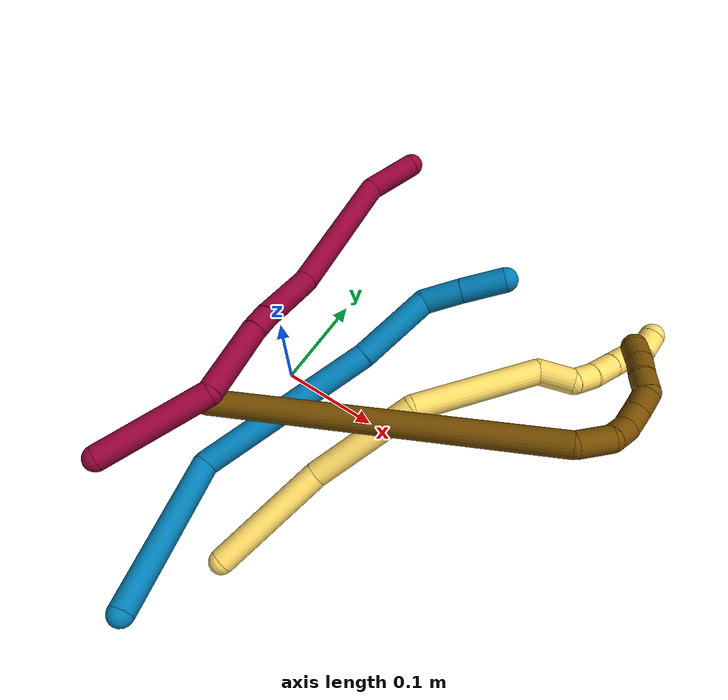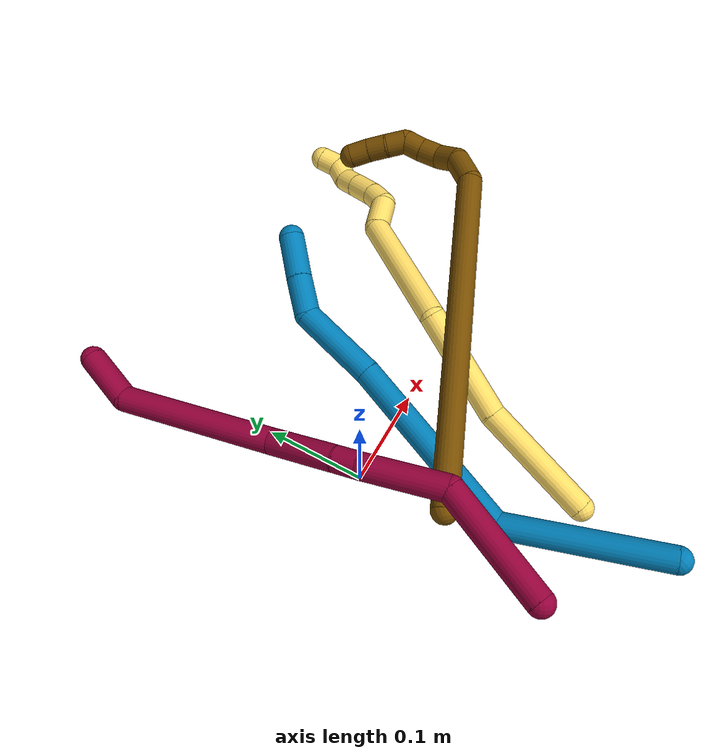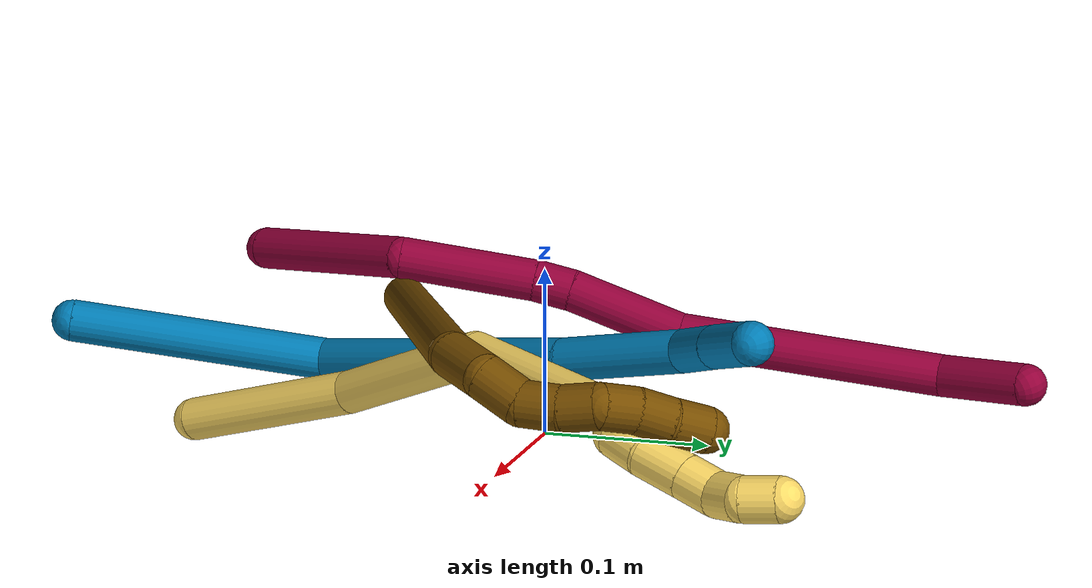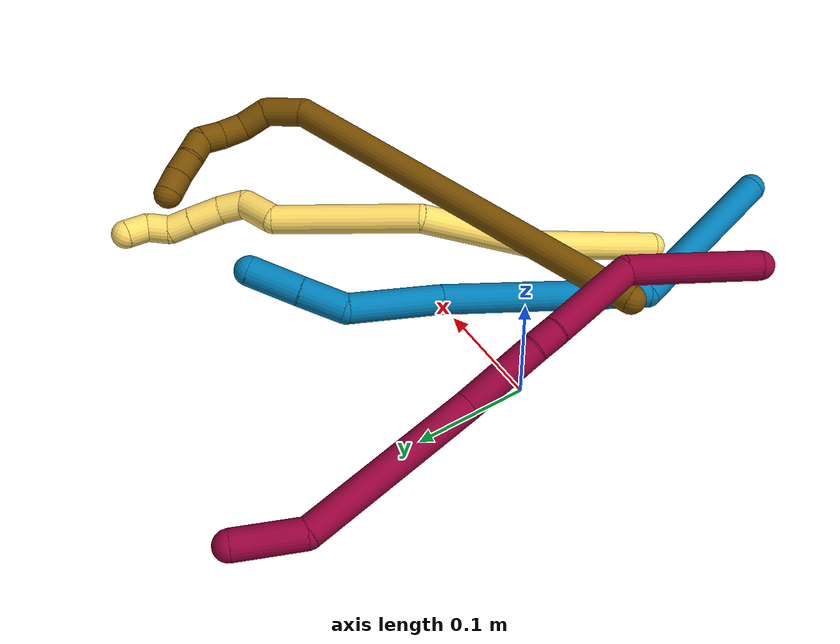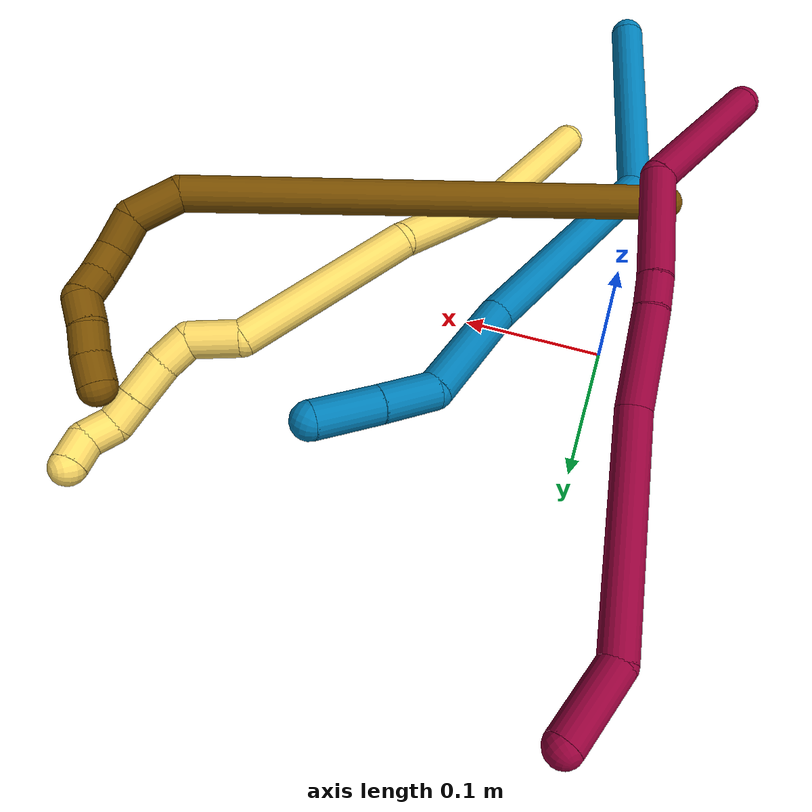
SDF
<sdf version="1.7">
 <world name="default">
  <model name="5">
   <static>0</static>
   <link name="5">
    <collision name="collision-cylinder-e_1_1_4">
     <pose>0.009583 0.018814 0.054523 -0.332277 0.164636 -0.027668</pose>
     <geometry><cylinder><radius>0.0125</radius><length>0.116937</length></cylinder></geometry>
     <surface>
      <friction><ode><mu>1.16</mu><mu2>1.16</mu2><slip1>0</slip1><slip2>0</slip2></ode></friction>
      <contact><ode><kp>1e+06</kp><kd>1</kd><max_vel>0</max_vel><min_depth>0.001</min_depth></ode></contact>
     </surface>
    </collision>
    <visual name="visual-cylinder-e_1_1_4">
     <pose>0.009583 0.018814 0.054523 -0.332277 0.164636 -0.027668</pose>
     <geometry><cylinder><radius>0.0125</radius><length>0.116937</length></cylinder></geometry>
     <material><ambient>1 0.858824 0.4 1</ambient></material>
    </visual>
    <collision name="collision-cylinder-e_2_4_5">
     <pose>0.024161 0.045025 0.16306 -0.136079 0.091388 -0.006232</pose>
     <geometry><cylinder><radius>0.0125</radius><length>0.109493</length></cylinder></geometry>
     <surface>
      <friction><ode><mu>1.16</mu><mu2>1.16</mu2><slip1>0</slip1><slip2>0</slip2></ode></friction>
      <contact><ode><kp>1e+06</kp><kd>1</kd><max_vel>0</max_vel><min_depth>0.001</min_depth></ode></contact>
     </surface>
    </collision>
    <visual name="visual-cylinder-e_2_4_5">
     <pose>0.024161 0.045025 0.16306 -0.136079 0.091388 -0.006232</pose>
     <geometry><cylinder><radius>0.0125</radius><length>0.109493</length></cylinder></geometry>
     <material><ambient>1 0.858824 0.4 1</ambient></material>
    </visual>
    <collision name="collision-cylinder-e_3_5_6">
     <pose>0.062106 0.051781 0.271595 0.011725 0.543568 0.003268</pose>
     <geometry><cylinder><radius>0.0125</radius><length>0.127415</length></cylinder></geometry>
     <surface>
      <friction><ode><mu>1.16</mu><mu2>1.16</mu2><slip1>0</slip1><slip2>0</slip2></ode></friction>
      <contact><ode><kp>1e+06</kp><kd>1</kd><max_vel>0</max_vel><min_depth>0.001</min_depth></ode></contact>
     </surface>
    </collision>
    <visual name="visual-cylinder-e_3_5_6">
     <pose>0.062106 0.051781 0.271595 0.011725 0.543568 0.003268</pose>
     <geometry><cylinder><radius>0.0125</radius><length>0.127415</length></cylinder></geometry>
     <material><ambient>1 0.858824 0.4 1</ambient></material>
    </visual>
    <collision name="collision-cylinder-e_4_6_7">
     <pose>0.102426 0.040712 0.338123 0.71526 0.433991 0.164405</pose>
     <geometry><cylinder><radius>0.0125</radius><length>0.035058</length></cylinder></geometry>
     <surface>
      <friction><ode><mu>1.16</mu><mu2>1.16</mu2><slip1>0</slip1><slip2>0</slip2></ode></friction>
      <contact><ode><kp>1e+06</kp><kd>1</kd><max_vel>0</max_vel><min_depth>0.001</min_depth></ode></contact>
     </surface>
    </collision>
    <visual name="visual-cylinder-e_4_6_7">
     <pose>0.102426 0.040712 0.338123 0.71526 0.433991 0.164405</pose>
     <geometry><cylinder><radius>0.0125</radius><length>0.035058</length></cylinder></geometry>
     <material><ambient>1 0.858824 0.4 1</ambient></material>
    </visual>
    <collision name="collision-cylinder-e_5_7_8">
     <pose>0.117385 0.031336 0.358315 -0.128073 0.74347 -0.049989</pose>
     <geometry><cylinder><radius>0.0125</radius><length>0.022422</length></cylinder></geometry>
     <surface>
      <friction><ode><mu>1.16</mu><mu2>1.16</mu2><slip1>0</slip1><slip2>0</slip2></ode></friction>
      <contact><ode><kp>1e+06</kp><kd>1</kd><max_vel>0</max_vel><min_depth>0.001</min_depth></ode></contact>
     </surface>
    </collision>
    <visual name="visual-cylinder-e_5_7_8">
     <pose>0.117385 0.031336 0.358315 -0.128073 0.74347 -0.049989</pose>
     <geometry><cylinder><radius>0.0125</radius><length>0.022422</length></cylinder></geometry>
     <material><ambient>1 0.858824 0.4 1</ambient></material>
    </visual>
    <collision name="collision-cylinder-e_6_8_9">
     <pose>0.134323 0.036101 0.376108 -0.368621 0.737034 -0.143732</pose>
     <geometry><cylinder><radius>0.0125</radius><length>0.027822</length></cylinder></geometry>
     <surface>
      <friction><ode><mu>1.16</mu><mu2>1.16</mu2><slip1>0</slip1><slip2>0</slip2></ode></friction>
      <contact><ode><kp>1e+06</kp><kd>1</kd><max_vel>0</max_vel><min_depth>0.001</min_depth></ode></contact>
     </surface>
    </collision>
    <visual name="visual-cylinder-e_6_8_9">
     <pose>0.134323 0.036101 0.376108 -0.368621 0.737034 -0.143732</pose>
     <geometry><cylinder><radius>0.0125</radius><length>0.027822</length></cylinder></geometry>
     <material><ambient>1 0.858824 0.4 1</ambient></material>
    </visual>
    <collision name="collision-cylinder-e_7_9_10">
     <pose>0.150689 0.042603 0.392681 -0.381014 0.751945 -0.151958</pose>
     <geometry><cylinder><radius>0.0125</radius><length>0.020544</length></cylinder></geometry>
     <surface>
      <friction><ode><mu>1.16</mu><mu2>1.16</mu2><slip1>0</slip1><slip2>0</slip2></ode></friction>
      <contact><ode><kp>1e+06</kp><kd>1</kd><max_vel>0</max_vel><min_depth>0.001</min_depth></ode></contact>
     </surface>
    </collision>
    <visual name="visual-cylinder-e_7_9_10">
     <pose>0.150689 0.042603 0.392681 -0.381014 0.751945 -0.151958</pose>
     <geometry><cylinder><radius>0.0125</radius><length>0.020544</length></cylinder></geometry>
     <material><ambient>1 0.858824 0.4 1</ambient></material>
    </visual>
    <collision name="collision-cylinder-e_8_10_11">
     <pose>0.161407 0.045402 0.409044 -0.001041 0.375235 -0.000198</pose>
     <geometry><cylinder><radius>0.0125</radius><length>0.020202</length></cylinder></geometry>
     <surface>
      <friction><ode><mu>1.16</mu><mu2>1.16</mu2><slip1>0</slip1><slip2>0</slip2></ode></friction>
      <contact><ode><kp>1e+06</kp><kd>1</kd><max_vel>0</max_vel><min_depth>0.001</min_depth></ode></contact>
     </surface>
    </collision>
    <visual name="visual-cylinder-e_8_10_11">
     <pose>0.161407 0.045402 0.409044 -0.001041 0.375235 -0.000198</pose>
     <geometry><cylinder><radius>0.0125</radius><length>0.020202</length></cylinder></geometry>
     <material><ambient>1 0.858824 0.4 1</ambient></material>
    </visual>
    <collision name="collision-cylinder-e_9_11_2">
     <pose>0.168064 0.051199 0.426114 -0.646196 0.298379 -0.10057</pose>
     <geometry><cylinder><radius>0.0125</radius><length>0.020107</length></cylinder></geometry>
     <surface>
      <friction><ode><mu>1.16</mu><mu2>1.16</mu2><slip1>0</slip1><slip2>0</slip2></ode></friction>
      <contact><ode><kp>1e+06</kp><kd>1</kd><max_vel>0</max_vel><min_depth>0.001</min_depth></ode></contact>
     </surface>
    </collision>
    <visual name="visual-cylinder-e_9_11_2">
     <pose>0.168064 0.051199 0.426114 -0.646196 0.298379 -0.10057</pose>
     <geometry><cylinder><radius>0.0125</radius><length>0.020107</length></cylinder></geometry>
     <material><ambient>1 0.858824 0.4 1</ambient></material>
    </visual>
    <collision name="collision-sphere-2">
     <pose>0.17102 0.056985 0.433786 0 -0 0</pose>
     <geometry><sphere><radius>0.0125</radius></sphere></geometry>
     <surface>
      <friction><ode><mu>1.16</mu><mu2>1.16</mu2><slip1>0</slip1><slip2>0</slip2></ode></friction>
      <contact><ode><kp>1e+06</kp><kd>1</kd><max_vel>0</max_vel><min_depth>0.001</min_depth></ode></contact>
     </surface>
    </collision>
    <visual name="visual-sphere-2">
     <pose>0.17102 0.056985 0.433786 0 -0 0</pose>
     <geometry><sphere><radius>0.0125</radius></sphere></geometry>
     <material><ambient>1 0.858824 0.4 1</ambient></material>
    </visual>
    <collision name="collision-sphere-11">
     <pose>0.165109 0.045412 0.418442 0 -0 0</pose>
     <geometry><sphere><radius>0.0125</radius></sphere></geometry>
     <surface>
      <friction><ode><mu>1.16</mu><mu2>1.16</mu2><slip1>0</slip1><slip2>0</slip2></ode></friction>
      <contact><ode><kp>1e+06</kp><kd>1</kd><max_vel>0</max_vel><min_depth>0.001</min_depth></ode></contact>
     </surface>
    </collision>
    <visual name="visual-sphere-11">
     <pose>0.165109 0.045412 0.418442 0 -0 0</pose>
     <geometry><sphere><radius>0.0125</radius></sphere></geometry>
     <material><ambient>1 0.858824 0.4 1</ambient></material>
    </visual>
    <collision name="collision-sphere-10">
     <pose>0.157705 0.045393 0.399645 0 -0 0</pose>
     <geometry><sphere><radius>0.0125</radius></sphere></geometry>
     <surface>
      <friction><ode><mu>1.16</mu><mu2>1.16</mu2><slip1>0</slip1><slip2>0</slip2></ode></friction>
      <contact><ode><kp>1e+06</kp><kd>1</kd><max_vel>0</max_vel><min_depth>0.001</min_depth></ode></contact>
     </surface>
    </collision>
    <visual name="visual-sphere-10">
     <pose>0.157705 0.045393 0.399645 0 -0 0</pose>
     <geometry><sphere><radius>0.0125</radius></sphere></geometry>
     <material><ambient>1 0.858824 0.4 1</ambient></material>
    </visual>
    <collision name="collision-sphere-9">
     <pose>0.143672 0.039813 0.385717 0 -0 0</pose>
     <geometry><sphere><radius>0.0125</radius></sphere></geometry>
     <surface>
      <friction><ode><mu>1.16</mu><mu2>1.16</mu2><slip1>0</slip1><slip2>0</slip2></ode></friction>
      <contact><ode><kp>1e+06</kp><kd>1</kd><max_vel>0</max_vel><min_depth>0.001</min_depth></ode></contact>
     </surface>
    </collision>
    <visual name="visual-sphere-9">
     <pose>0.143672 0.039813 0.385717 0 -0 0</pose>
     <geometry><sphere><radius>0.0125</radius></sphere></geometry>
     <material><ambient>1 0.858824 0.4 1</ambient></material>
    </visual>
    <collision name="collision-sphere-4">
     <pose>0.019165 0.037629 0.109046 0 -0 0</pose>
     <geometry><sphere><radius>0.0125</radius></sphere></geometry>
     <surface>
      <friction><ode><mu>1.16</mu><mu2>1.16</mu2><slip1>0</slip1><slip2>0</slip2></ode></friction>
      <contact><ode><kp>1e+06</kp><kd>1</kd><max_vel>0</max_vel><min_depth>0.001</min_depth></ode></contact>
     </surface>
    </collision>
    <visual name="visual-sphere-4">
     <pose>0.019165 0.037629 0.109046 0 -0 0</pose>
     <geometry><sphere><radius>0.0125</radius></sphere></geometry>
     <material><ambient>1 0.858824 0.4 1</ambient></material>
    </visual>
    <collision name="collision-sphere-1">
     <geometry><sphere><radius>0.0125</radius></sphere></geometry>
     <surface>
      <friction><ode><mu>1.16</mu><mu2>1.16</mu2><slip1>0</slip1><slip2>0</slip2></ode></friction>
      <contact><ode><kp>1e+06</kp><kd>1</kd><max_vel>0</max_vel><min_depth>0.001</min_depth></ode></contact>
     </surface>
    </collision>
    <visual name="visual-sphere-1">
     <geometry><sphere><radius>0.0125</radius></sphere></geometry>
     <material><ambient>1 0.858824 0.4 1</ambient></material>
    </visual>
    <collision name="collision-sphere-8">
     <pose>0.124973 0.03239 0.3665 0 -0 0</pose>
     <geometry><sphere><radius>0.0125</radius></sphere></geometry>
     <surface>
      <friction><ode><mu>1.16</mu><mu2>1.16</mu2><slip1>0</slip1><slip2>0</slip2></ode></friction>
      <contact><ode><kp>1e+06</kp><kd>1</kd><max_vel>0</max_vel><min_depth>0.001</min_depth></ode></contact>
     </surface>
    </collision>
    <visual name="visual-sphere-8">
     <pose>0.124973 0.03239 0.3665 0 -0 0</pose>
     <geometry><sphere><radius>0.0125</radius></sphere></geometry>
     <material><ambient>1 0.858824 0.4 1</ambient></material>
    </visual>
    <collision name="collision-sphere-5">
     <pose>0.029158 0.052421 0.217074 0 -0 0</pose>
     <geometry><sphere><radius>0.0125</radius></sphere></geometry>
     <surface>
      <friction><ode><mu>1.16</mu><mu2>1.16</mu2><slip1>0</slip1><slip2>0</slip2></ode></friction>
      <contact><ode><kp>1e+06</kp><kd>1</kd><max_vel>0</max_vel><min_depth>0.001</min_depth></ode></contact>
     </surface>
    </collision>
    <visual name="visual-sphere-5">
     <pose>0.029158 0.052421 0.217074 0 -0 0</pose>
     <geometry><sphere><radius>0.0125</radius></sphere></geometry>
     <material><ambient>1 0.858824 0.4 1</ambient></material>
    </visual>
    <collision name="collision-sphere-6">
     <pose>0.095055 0.051142 0.326117 0 -0 0</pose>
     <geometry><sphere><radius>0.0125</radius></sphere></geometry>
     <surface>
      <friction><ode><mu>1.16</mu><mu2>1.16</mu2><slip1>0</slip1><slip2>0</slip2></ode></friction>
      <contact><ode><kp>1e+06</kp><kd>1</kd><max_vel>0</max_vel><min_depth>0.001</min_depth></ode></contact>
     </surface>
    </collision>
    <visual name="visual-sphere-6">
     <pose>0.095055 0.051142 0.326117 0 -0 0</pose>
     <geometry><sphere><radius>0.0125</radius></sphere></geometry>
     <material><ambient>1 0.858824 0.4 1</ambient></material>
    </visual>
    <collision name="collision-sphere-7">
     <pose>0.109797 0.030282 0.35013 0 -0 0</pose>
     <geometry><sphere><radius>0.0125</radius></sphere></geometry>
     <surface>
      <friction><ode><mu>1.16</mu><mu2>1.16</mu2><slip1>0</slip1><slip2>0</slip2></ode></friction>
      <contact><ode><kp>1e+06</kp><kd>1</kd><max_vel>0</max_vel><min_depth>0.001</min_depth></ode></contact>
     </surface>
    </collision>
    <visual name="visual-sphere-7">
     <pose>0.109797 0.030282 0.35013 0 -0 0</pose>
     <geometry><sphere><radius>0.0125</radius></sphere></geometry>
     <material><ambient>1 0.858824 0.4 1</ambient></material>
    </visual>
    <inertial>
     <pose>0.06275 0.039368 0.228172 0 -0 0</pose>
     <mass>0.5</mass>
     <inertia>
      <ixx>0.000422</ixx>
      <ixy>0</ixy>
      <ixz>0</ixz>
      <iyy>0.000434</iyy>
      <iyz>0</iyz>
      <izz>-0.000155</izz>
     </inertia>
    </inertial>
   </link>
   <pose>0.069282 -0.194769 0.011557 -0.049967 1.09237 0.896404</pose>
  </model>
  <model name="8">
   <static>0</static>
   <link name="8">
    <collision name="collision-cylinder-e_1_1_4">
     <pose>-0.035498 0.039279 -0.020653 -2.05487 -0.674677 1.05221</pose>
     <geometry><cylinder><radius>0.0125</radius><length>0.113658</length></cylinder></geometry>
     <surface>
      <friction><ode><mu>1.16</mu><mu2>1.16</mu2><slip1>0</slip1><slip2>0</slip2></ode></friction>
      <contact><ode><kp>1e+06</kp><kd>1</kd><max_vel>0</max_vel><min_depth>0.001</min_depth></ode></contact>
     </surface>
    </collision>
    <visual name="visual-cylinder-e_1_1_4">
     <pose>-0.035498 0.039279 -0.020653 -2.05487 -0.674677 1.05221</pose>
     <geometry><cylinder><radius>0.0125</radius><length>0.113658</length></cylinder></geometry>
     <material><ambient>0.584314 0 0.227451 1</ambient></material>
    </visual>
    <collision name="collision-cylinder-e_2_4_5">
     <pose>-0.075535 0.105372 -0.07151 -2.4156 -0.111907 0.292825</pose>
     <geometry><cylinder><radius>0.0125</radius><length>0.081286</length></cylinder></geometry>
     <surface>
      <friction><ode><mu>1.16</mu><mu2>1.16</mu2><slip1>0</slip1><slip2>0</slip2></ode></friction>
      <contact><ode><kp>1e+06</kp><kd>1</kd><max_vel>0</max_vel><min_depth>0.001</min_depth></ode></contact>
     </surface>
    </collision>
    <visual name="visual-cylinder-e_2_4_5">
     <pose>-0.075535 0.105372 -0.07151 -2.4156 -0.111907 0.292825</pose>
     <geometry><cylinder><radius>0.0125</radius><length>0.081286</length></cylinder></geometry>
     <material><ambient>0.584314 0 0.227451 1</ambient></material>
    </visual>
    <collision name="collision-cylinder-e_3_5_6">
     <pose>-0.081186 0.140602 -0.109374 -2.30909 -0.097429 0.219674</pose>
     <geometry><cylinder><radius>0.0125</radius><length>0.02287</length></cylinder></geometry>
     <surface>
      <friction><ode><mu>1.16</mu><mu2>1.16</mu2><slip1>0</slip1><slip2>0</slip2></ode></friction>
      <contact><ode><kp>1e+06</kp><kd>1</kd><max_vel>0</max_vel><min_depth>0.001</min_depth></ode></contact>
     </surface>
    </collision>
    <visual name="visual-cylinder-e_3_5_6">
     <pose>-0.081186 0.140602 -0.109374 -2.30909 -0.097429 0.219674</pose>
     <geometry><cylinder><radius>0.0125</radius><length>0.02287</length></cylinder></geometry>
     <material><ambient>0.584314 0 0.227451 1</ambient></material>
    </visual>
    <collision name="collision-cylinder-e_4_6_7">
     <pose>-0.08376 0.176805 -0.137503 -2.20573 -0.042327 0.083718</pose>
     <geometry><cylinder><radius>0.0125</radius><length>0.069084</length></cylinder></geometry>
     <surface>
      <friction><ode><mu>1.16</mu><mu2>1.16</mu2><slip1>0</slip1><slip2>0</slip2></ode></friction>
      <contact><ode><kp>1e+06</kp><kd>1</kd><max_vel>0</max_vel><min_depth>0.001</min_depth></ode></contact>
     </surface>
    </collision>
    <visual name="visual-cylinder-e_4_6_7">
     <pose>-0.08376 0.176805 -0.137503 -2.20573 -0.042327 0.083718</pose>
     <geometry><cylinder><radius>0.0125</radius><length>0.069084</length></cylinder></geometry>
     <material><ambient>0.584314 0 0.227451 1</ambient></material>
    </visual>
    <collision name="collision-cylinder-e_5_7_8">
     <pose>-0.096563 0.256506 -0.215577 -2.40809 -0.145221 0.374287</pose>
     <geometry><cylinder><radius>0.0125</radius><length>0.156745</length></cylinder></geometry>
     <surface>
      <friction><ode><mu>1.16</mu><mu2>1.16</mu2><slip1>0</slip1><slip2>0</slip2></ode></friction>
      <contact><ode><kp>1e+06</kp><kd>1</kd><max_vel>0</max_vel><min_depth>0.001</min_depth></ode></contact>
     </surface>
    </collision>
    <visual name="visual-cylinder-e_5_7_8">
     <pose>-0.096563 0.256506 -0.215577 -2.40809 -0.145221 0.374287</pose>
     <geometry><cylinder><radius>0.0125</radius><length>0.156745</length></cylinder></geometry>
     <material><ambient>0.584314 0 0.227451 1</ambient></material>
    </visual>
    <collision name="collision-cylinder-e_6_8_2">
     <pose>-0.123838 0.328462 -0.284953 -2.10185 -0.601001 0.992416</pose>
     <geometry><cylinder><radius>0.0125</radius><length>0.056358</length></cylinder></geometry>
     <surface>
      <friction><ode><mu>1.16</mu><mu2>1.16</mu2><slip1>0</slip1><slip2>0</slip2></ode></friction>
      <contact><ode><kp>1e+06</kp><kd>1</kd><max_vel>0</max_vel><min_depth>0.001</min_depth></ode></contact>
     </surface>
    </collision>
    <visual name="visual-cylinder-e_6_8_2">
     <pose>-0.123838 0.328462 -0.284953 -2.10185 -0.601001 0.992416</pose>
     <geometry><cylinder><radius>0.0125</radius><length>0.056358</length></cylinder></geometry>
     <material><ambient>0.584314 0 0.227451 1</ambient></material>
    </visual>
    <collision name="collision-sphere-2">
     <pose>-0.139773 0.348502 -0.296723 0 -0 0</pose>
     <geometry><sphere><radius>0.0125</radius></sphere></geometry>
     <surface>
      <friction><ode><mu>1.16</mu><mu2>1.16</mu2><slip1>0</slip1><slip2>0</slip2></ode></friction>
      <contact><ode><kp>1e+06</kp><kd>1</kd><max_vel>0</max_vel><min_depth>0.001</min_depth></ode></contact>
     </surface>
    </collision>
    <visual name="visual-sphere-2">
     <pose>-0.139773 0.348502 -0.296723 0 -0 0</pose>
     <geometry><sphere><radius>0.0125</radius></sphere></geometry>
     <material><ambient>0.584314 0 0.227451 1</ambient></material>
    </visual>
    <collision name="collision-sphere-4">
     <pose>-0.070996 0.078559 -0.041306 0 -0 0</pose>
     <geometry><sphere><radius>0.0125</radius></sphere></geometry>
     <surface>
      <friction><ode><mu>1.16</mu><mu2>1.16</mu2><slip1>0</slip1><slip2>0</slip2></ode></friction>
      <contact><ode><kp>1e+06</kp><kd>1</kd><max_vel>0</max_vel><min_depth>0.001</min_depth></ode></contact>
     </surface>
    </collision>
    <visual name="visual-sphere-4">
     <pose>-0.070996 0.078559 -0.041306 0 -0 0</pose>
     <geometry><sphere><radius>0.0125</radius></sphere></geometry>
     <material><ambient>0.584314 0 0.227451 1</ambient></material>
    </visual>
    <collision name="collision-sphere-1">
     <geometry><sphere><radius>0.0125</radius></sphere></geometry>
     <surface>
      <friction><ode><mu>1.16</mu><mu2>1.16</mu2><slip1>0</slip1><slip2>0</slip2></ode></friction>
      <contact><ode><kp>1e+06</kp><kd>1</kd><max_vel>0</max_vel><min_depth>0.001</min_depth></ode></contact>
     </surface>
    </collision>
    <visual name="visual-sphere-1">
     <geometry><sphere><radius>0.0125</radius></sphere></geometry>
     <material><ambient>0.584314 0 0.227451 1</ambient></material>
    </visual>
    <collision name="collision-sphere-8">
     <pose>-0.107904 0.308422 -0.273183 0 -0 0</pose>
     <geometry><sphere><radius>0.0125</radius></sphere></geometry>
     <surface>
      <friction><ode><mu>1.16</mu><mu2>1.16</mu2><slip1>0</slip1><slip2>0</slip2></ode></friction>
      <contact><ode><kp>1e+06</kp><kd>1</kd><max_vel>0</max_vel><min_depth>0.001</min_depth></ode></contact>
     </surface>
    </collision>
    <visual name="visual-sphere-8">
     <pose>-0.107904 0.308422 -0.273183 0 -0 0</pose>
     <geometry><sphere><radius>0.0125</radius></sphere></geometry>
     <material><ambient>0.584314 0 0.227451 1</ambient></material>
    </visual>
    <collision name="collision-sphere-5">
     <pose>-0.080073 0.132185 -0.101715 0 -0 0</pose>
     <geometry><sphere><radius>0.0125</radius></sphere></geometry>
     <surface>
      <friction><ode><mu>1.16</mu><mu2>1.16</mu2><slip1>0</slip1><slip2>0</slip2></ode></friction>
      <contact><ode><kp>1e+06</kp><kd>1</kd><max_vel>0</max_vel><min_depth>0.001</min_depth></ode></contact>
     </surface>
    </collision>
    <visual name="visual-sphere-5">
     <pose>-0.080073 0.132185 -0.101715 0 -0 0</pose>
     <geometry><sphere><radius>0.0125</radius></sphere></geometry>
     <material><ambient>0.584314 0 0.227451 1</ambient></material>
    </visual>
    <collision name="collision-sphere-6">
     <pose>-0.082298 0.14902 -0.117034 0 -0 0</pose>
     <geometry><sphere><radius>0.0125</radius></sphere></geometry>
     <surface>
      <friction><ode><mu>1.16</mu><mu2>1.16</mu2><slip1>0</slip1><slip2>0</slip2></ode></friction>
      <contact><ode><kp>1e+06</kp><kd>1</kd><max_vel>0</max_vel><min_depth>0.001</min_depth></ode></contact>
     </surface>
    </collision>
    <visual name="visual-sphere-6">
     <pose>-0.082298 0.14902 -0.117034 0 -0 0</pose>
     <geometry><sphere><radius>0.0125</radius></sphere></geometry>
     <material><ambient>0.584314 0 0.227451 1</ambient></material>
    </visual>
    <collision name="collision-sphere-7">
     <pose>-0.085221 0.20459 -0.157972 0 -0 0</pose>
     <geometry><sphere><radius>0.0125</radius></sphere></geometry>
     <surface>
      <friction><ode><mu>1.16</mu><mu2>1.16</mu2><slip1>0</slip1><slip2>0</slip2></ode></friction>
      <contact><ode><kp>1e+06</kp><kd>1</kd><max_vel>0</max_vel><min_depth>0.001</min_depth></ode></contact>
     </surface>
    </collision>
    <visual name="visual-sphere-7">
     <pose>-0.085221 0.20459 -0.157972 0 -0 0</pose>
     <geometry><sphere><radius>0.0125</radius></sphere></geometry>
     <material><ambient>0.584314 0 0.227451 1</ambient></material>
    </visual>
    <inertial>
     <pose>-0.079865 0.174354 -0.140021 0 -0 0</pose>
     <mass>0.5</mass>
     <inertia>
      <ixx>0.000657</ixx>
      <ixy>0</ixy>
      <ixz>0</ixz>
      <iyy>2.7e-05</iyy>
      <iyz>0</iyz>
      <izz>-0.000254</izz>
     </inertia>
    </inertial>
   </link>
   <pose>-0.057424 -0.195046 0.087713 -1.96798 0.791189 -2.64998</pose>
  </model>
  <model name="9">
   <static>0</static>
   <link name="9">
    <collision name="collision-cylinder-e_1_1_4">
     <pose>0.015477 0.068821 0.030799 -1.15 0.202454 -0.13146</pose>
     <geometry><cylinder><radius>0.0125</radius><length>0.15394</length></cylinder></geometry>
     <surface>
      <friction><ode><mu>1.16</mu><mu2>1.16</mu2><slip1>0</slip1><slip2>0</slip2></ode></friction>
      <contact><ode><kp>1e+06</kp><kd>1</kd><max_vel>0</max_vel><min_depth>0.001</min_depth></ode></contact>
     </surface>
    </collision>
    <visual name="visual-cylinder-e_1_1_4">
     <pose>0.015477 0.068821 0.030799 -1.15 0.202454 -0.13146</pose>
     <geometry><cylinder><radius>0.0125</radius><length>0.15394</length></cylinder></geometry>
     <material><ambient>0 0.490196 0.709804 1</ambient></material>
    </visual>
    <collision name="collision-cylinder-e_2_4_5">
     <pose>0.075309 0.21479 0.042077 -1.81862 0.508488 -0.64436</pose>
     <geometry><cylinder><radius>0.0125</radius><length>0.182212</length></cylinder></geometry>
     <surface>
      <friction><ode><mu>1.16</mu><mu2>1.16</mu2><slip1>0</slip1><slip2>0</slip2></ode></friction>
      <contact><ode><kp>1e+06</kp><kd>1</kd><max_vel>0</max_vel><min_depth>0.001</min_depth></ode></contact>
     </surface>
    </collision>
    <visual name="visual-cylinder-e_2_4_5">
     <pose>0.075309 0.21479 0.042077 -1.81862 0.508488 -0.64436</pose>
     <geometry><cylinder><radius>0.0125</radius><length>0.182212</length></cylinder></geometry>
     <material><ambient>0 0.490196 0.709804 1</ambient></material>
    </visual>
    <collision name="collision-cylinder-e_3_5_6">
     <pose>0.140971 0.326111 0.018986 -1.67491 0.555064 -0.612512</pose>
     <geometry><cylinder><radius>0.0125</radius><length>0.080859</length></cylinder></geometry>
     <surface>
      <friction><ode><mu>1.16</mu><mu2>1.16</mu2><slip1>0</slip1><slip2>0</slip2></ode></friction>
      <contact><ode><kp>1e+06</kp><kd>1</kd><max_vel>0</max_vel><min_depth>0.001</min_depth></ode></contact>
     </surface>
    </collision>
    <visual name="visual-cylinder-e_3_5_6">
     <pose>0.140971 0.326111 0.018986 -1.67491 0.555064 -0.612512</pose>
     <geometry><cylinder><radius>0.0125</radius><length>0.080859</length></cylinder></geometry>
     <material><ambient>0 0.490196 0.709804 1</ambient></material>
    </visual>
    <collision name="collision-cylinder-e_4_6_7">
     <pose>0.172322 0.372147 0.003942 -2.3395 0.546778 -1.16856</pose>
     <geometry><cylinder><radius>0.0125</radius><length>0.038639</length></cylinder></geometry>
     <surface>
      <friction><ode><mu>1.16</mu><mu2>1.16</mu2><slip1>0</slip1><slip2>0</slip2></ode></friction>
      <contact><ode><kp>1e+06</kp><kd>1</kd><max_vel>0</max_vel><min_depth>0.001</min_depth></ode></contact>
     </surface>
    </collision>
    <visual name="visual-cylinder-e_4_6_7">
     <pose>0.172322 0.372147 0.003942 -2.3395 0.546778 -1.16856</pose>
     <geometry><cylinder><radius>0.0125</radius><length>0.038639</length></cylinder></geometry>
     <material><ambient>0 0.490196 0.709804 1</ambient></material>
    </visual>
    <collision name="collision-cylinder-e_5_7_2">
     <pose>0.193396 0.397394 -0.021349 -2.37214 0.520583 -1.16364</pose>
     <geometry><cylinder><radius>0.0125</radius><length>0.04435</length></cylinder></geometry>
     <surface>
      <friction><ode><mu>1.16</mu><mu2>1.16</mu2><slip1>0</slip1><slip2>0</slip2></ode></friction>
      <contact><ode><kp>1e+06</kp><kd>1</kd><max_vel>0</max_vel><min_depth>0.001</min_depth></ode></contact>
     </surface>
    </collision>
    <visual name="visual-cylinder-e_5_7_2">
     <pose>0.193396 0.397394 -0.021349 -2.37214 0.520583 -1.16364</pose>
     <geometry><cylinder><radius>0.0125</radius><length>0.04435</length></cylinder></geometry>
     <material><ambient>0 0.490196 0.709804 1</ambient></material>
    </visual>
    <collision name="collision-sphere-2">
     <pose>0.204426 0.410778 -0.035167 0 -0 0</pose>
     <geometry><sphere><radius>0.0125</radius></sphere></geometry>
     <surface>
      <friction><ode><mu>1.16</mu><mu2>1.16</mu2><slip1>0</slip1><slip2>0</slip2></ode></friction>
      <contact><ode><kp>1e+06</kp><kd>1</kd><max_vel>0</max_vel><min_depth>0.001</min_depth></ode></contact>
     </surface>
    </collision>
    <visual name="visual-sphere-2">
     <pose>0.204426 0.410778 -0.035167 0 -0 0</pose>
     <geometry><sphere><radius>0.0125</radius></sphere></geometry>
     <material><ambient>0 0.490196 0.709804 1</ambient></material>
    </visual>
    <collision name="collision-sphere-7">
     <pose>0.182367 0.38401 -0.007531 0 -0 0</pose>
     <geometry><sphere><radius>0.0125</radius></sphere></geometry>
     <surface>
      <friction><ode><mu>1.16</mu><mu2>1.16</mu2><slip1>0</slip1><slip2>0</slip2></ode></friction>
      <contact><ode><kp>1e+06</kp><kd>1</kd><max_vel>0</max_vel><min_depth>0.001</min_depth></ode></contact>
     </surface>
    </collision>
    <visual name="visual-sphere-7">
     <pose>0.182367 0.38401 -0.007531 0 -0 0</pose>
     <geometry><sphere><radius>0.0125</radius></sphere></geometry>
     <material><ambient>0 0.490196 0.709804 1</ambient></material>
    </visual>
    <collision name="collision-sphere-6">
     <pose>0.162277 0.360285 0.015415 0 -0 0</pose>
     <geometry><sphere><radius>0.0125</radius></sphere></geometry>
     <surface>
      <friction><ode><mu>1.16</mu><mu2>1.16</mu2><slip1>0</slip1><slip2>0</slip2></ode></friction>
      <contact><ode><kp>1e+06</kp><kd>1</kd><max_vel>0</max_vel><min_depth>0.001</min_depth></ode></contact>
     </surface>
    </collision>
    <visual name="visual-sphere-6">
     <pose>0.162277 0.360285 0.015415 0 -0 0</pose>
     <geometry><sphere><radius>0.0125</radius></sphere></geometry>
     <material><ambient>0 0.490196 0.709804 1</ambient></material>
    </visual>
    <collision name="collision-sphere-5">
     <pose>0.119665 0.291938 0.022557 0 -0 0</pose>
     <geometry><sphere><radius>0.0125</radius></sphere></geometry>
     <surface>
      <friction><ode><mu>1.16</mu><mu2>1.16</mu2><slip1>0</slip1><slip2>0</slip2></ode></friction>
      <contact><ode><kp>1e+06</kp><kd>1</kd><max_vel>0</max_vel><min_depth>0.001</min_depth></ode></contact>
     </surface>
    </collision>
    <visual name="visual-sphere-5">
     <pose>0.119665 0.291938 0.022557 0 -0 0</pose>
     <geometry><sphere><radius>0.0125</radius></sphere></geometry>
     <material><ambient>0 0.490196 0.709804 1</ambient></material>
    </visual>
    <collision name="collision-sphere-1">
     <geometry><sphere><radius>0.0125</radius></sphere></geometry>
     <surface>
      <friction><ode><mu>1.16</mu><mu2>1.16</mu2><slip1>0</slip1><slip2>0</slip2></ode></friction>
      <contact><ode><kp>1e+06</kp><kd>1</kd><max_vel>0</max_vel><min_depth>0.001</min_depth></ode></contact>
     </surface>
    </collision>
    <visual name="visual-sphere-1">
     <geometry><sphere><radius>0.0125</radius></sphere></geometry>
     <material><ambient>0 0.490196 0.709804 1</ambient></material>
    </visual>
    <collision name="collision-sphere-4">
     <pose>0.030953 0.137642 0.061598 0 -0 0</pose>
     <geometry><sphere><radius>0.0125</radius></sphere></geometry>
     <surface>
      <friction><ode><mu>1.16</mu><mu2>1.16</mu2><slip1>0</slip1><slip2>0</slip2></ode></friction>
      <contact><ode><kp>1e+06</kp><kd>1</kd><max_vel>0</max_vel><min_depth>0.001</min_depth></ode></contact>
     </surface>
    </collision>
    <visual name="visual-sphere-4">
     <pose>0.030953 0.137642 0.061598 0 -0 0</pose>
     <geometry><sphere><radius>0.0125</radius></sphere></geometry>
     <material><ambient>0 0.490196 0.709804 1</ambient></material>
    </visual>
    <inertial>
     <pose>0.085478 0.216209 0.026298 0 -0 0</pose>
     <mass>0.5</mass>
     <inertia>
      <ixx>0.000369</ixx>
      <ixy>0</ixy>
      <ixz>0</ixz>
      <iyy>-0.000123</iyy>
      <iyz>0</iyz>
      <izz>-0.001106</izz>
     </inertia>
    </inertial>
   </link>
   <pose>0.042545 -0.282434 0.059129 -1.63273 -1.20066 1.4634</pose>
  </model>
  <model name="12">
   <static>0</static>
   <link name="12">
    <collision name="collision-cylinder-e_1_1_4">
     <pose>0.052801 0.001631 0.160792 -0.010141 0.317271 -0.001622</pose>
     <geometry><cylinder><radius>0.0125</radius><length>0.338494</length></cylinder></geometry>
     <surface>
      <friction><ode><mu>1.16</mu><mu2>1.16</mu2><slip1>0</slip1><slip2>0</slip2></ode></friction>
      <contact><ode><kp>1e+06</kp><kd>1</kd><max_vel>0</max_vel><min_depth>0.001</min_depth></ode></contact>
     </surface>
    </collision>
    <visual name="visual-cylinder-e_1_1_4">
     <pose>0.052801 0.001631 0.160792 -0.010141 0.317271 -0.001622</pose>
     <geometry><cylinder><radius>0.0125</radius><length>0.338494</length></cylinder></geometry>
     <material><ambient>0.466667 0.301961 0 1</ambient></material>
    </visual>
    <collision name="collision-cylinder-e_2_4_5">
     <pose>0.103422 0.007077 0.33826 -0.224953 -0.12676 0.014337</pose>
     <geometry><cylinder><radius>0.0125</radius><length>0.034492</length></cylinder></geometry>
     <surface>
      <friction><ode><mu>1.16</mu><mu2>1.16</mu2><slip1>0</slip1><slip2>0</slip2></ode></friction>
      <contact><ode><kp>1e+06</kp><kd>1</kd><max_vel>0</max_vel><min_depth>0.001</min_depth></ode></contact>
     </surface>
    </collision>
    <visual name="visual-cylinder-e_2_4_5">
     <pose>0.103422 0.007077 0.33826 -0.224953 -0.12676 0.014337</pose>
     <geometry><cylinder><radius>0.0125</radius><length>0.034492</length></cylinder></geometry>
     <material><ambient>0.466667 0.301961 0 1</ambient></material>
    </visual>
    <collision name="collision-cylinder-e_3_5_6">
     <pose>0.094072 0.016711 0.363444 -0.59984 -0.607827 0.193374</pose>
     <geometry><cylinder><radius>0.0125</radius><length>0.025108</length></cylinder></geometry>
     <surface>
      <friction><ode><mu>1.16</mu><mu2>1.16</mu2><slip1>0</slip1><slip2>0</slip2></ode></friction>
      <contact><ode><kp>1e+06</kp><kd>1</kd><max_vel>0</max_vel><min_depth>0.001</min_depth></ode></contact>
     </surface>
    </collision>
    <visual name="visual-cylinder-e_3_5_6">
     <pose>0.094072 0.016711 0.363444 -0.59984 -0.607827 0.193374</pose>
     <geometry><cylinder><radius>0.0125</radius><length>0.025108</length></cylinder></geometry>
     <material><ambient>0.466667 0.301961 0 1</ambient></material>
    </visual>
    <collision name="collision-cylinder-e_4_6_7">
     <pose>0.07887 0.022894 0.379268 -0.049811 -0.831316 0.021989</pose>
     <geometry><cylinder><radius>0.0125</radius><length>0.021744</length></cylinder></geometry>
     <surface>
      <friction><ode><mu>1.16</mu><mu2>1.16</mu2><slip1>0</slip1><slip2>0</slip2></ode></friction>
      <contact><ode><kp>1e+06</kp><kd>1</kd><max_vel>0</max_vel><min_depth>0.001</min_depth></ode></contact>
     </surface>
    </collision>
    <visual name="visual-cylinder-e_4_6_7">
     <pose>0.07887 0.022894 0.379268 -0.049811 -0.831316 0.021989</pose>
     <geometry><cylinder><radius>0.0125</radius><length>0.021744</length></cylinder></geometry>
     <material><ambient>0.466667 0.301961 0 1</ambient></material>
    </visual>
    <collision name="collision-cylinder-e_5_7_8">
     <pose>0.063437 0.021721 0.39315 0.229985 -0.831892 -0.101951</pose>
     <geometry><cylinder><radius>0.0125</radius><length>0.020023</length></cylinder></geometry>
     <surface>
      <friction><ode><mu>1.16</mu><mu2>1.16</mu2><slip1>0</slip1><slip2>0</slip2></ode></friction>
      <contact><ode><kp>1e+06</kp><kd>1</kd><max_vel>0</max_vel><min_depth>0.001</min_depth></ode></contact>
     </surface>
    </collision>
    <visual name="visual-cylinder-e_5_7_8">
     <pose>0.063437 0.021721 0.39315 0.229985 -0.831892 -0.101951</pose>
     <geometry><cylinder><radius>0.0125</radius><length>0.020023</length></cylinder></geometry>
     <material><ambient>0.466667 0.301961 0 1</ambient></material>
    </visual>
    <collision name="collision-cylinder-e_6_8_9">
     <pose>0.046029 0.020994 0.400344 -0.910216 -1.4687 0.832023</pose>
     <geometry><cylinder><radius>0.0125</radius><length>0.020119</length></cylinder></geometry>
     <surface>
      <friction><ode><mu>1.16</mu><mu2>1.16</mu2><slip1>0</slip1><slip2>0</slip2></ode></friction>
      <contact><ode><kp>1e+06</kp><kd>1</kd><max_vel>0</max_vel><min_depth>0.001</min_depth></ode></contact>
     </surface>
    </collision>
    <visual name="visual-cylinder-e_6_8_9">
     <pose>0.046029 0.020994 0.400344 -0.910216 -1.4687 0.832023</pose>
     <geometry><cylinder><radius>0.0125</radius><length>0.020119</length></cylinder></geometry>
     <material><ambient>0.466667 0.301961 0 1</ambient></material>
    </visual>
    <collision name="collision-cylinder-e_7_9_10">
     <pose>0.026471 0.024258 0.402682 -0.962742 -1.26735 0.732933</pose>
     <geometry><cylinder><radius>0.0125</radius><length>0.020016</length></cylinder></geometry>
     <surface>
      <friction><ode><mu>1.16</mu><mu2>1.16</mu2><slip1>0</slip1><slip2>0</slip2></ode></friction>
      <contact><ode><kp>1e+06</kp><kd>1</kd><max_vel>0</max_vel><min_depth>0.001</min_depth></ode></contact>
     </surface>
    </collision>
    <visual name="visual-cylinder-e_7_9_10">
     <pose>0.026471 0.024258 0.402682 -0.962742 -1.26735 0.732933</pose>
     <geometry><cylinder><radius>0.0125</radius><length>0.020016</length></cylinder></geometry>
     <material><ambient>0.466667 0.301961 0 1</ambient></material>
    </visual>
    <collision name="collision-cylinder-e_8_10_2">
     <pose>0.007133 0.028713 0.404866 -1.33746 -1.36367 1.14061</pose>
     <geometry><cylinder><radius>0.0125</radius><length>0.020003</length></cylinder></geometry>
     <surface>
      <friction><ode><mu>1.16</mu><mu2>1.16</mu2><slip1>0</slip1><slip2>0</slip2></ode></friction>
      <contact><ode><kp>1e+06</kp><kd>1</kd><max_vel>0</max_vel><min_depth>0.001</min_depth></ode></contact>
     </surface>
    </collision>
    <visual name="visual-cylinder-e_8_10_2">
     <pose>0.007133 0.028713 0.404866 -1.33746 -1.36367 1.14061</pose>
     <geometry><cylinder><radius>0.0125</radius><length>0.020003</length></cylinder></geometry>
     <material><ambient>0.466667 0.301961 0 1</ambient></material>
    </visual>
    <collision name="collision-sphere-2">
     <pose>-0.002655 0.030715 0.405341 0 -0 0</pose>
     <geometry><sphere><radius>0.0125</radius></sphere></geometry>
     <surface>
      <friction><ode><mu>1.16</mu><mu2>1.16</mu2><slip1>0</slip1><slip2>0</slip2></ode></friction>
      <contact><ode><kp>1e+06</kp><kd>1</kd><max_vel>0</max_vel><min_depth>0.001</min_depth></ode></contact>
     </surface>
    </collision>
    <visual name="visual-sphere-2">
     <pose>-0.002655 0.030715 0.405341 0 -0 0</pose>
     <geometry><sphere><radius>0.0125</radius></sphere></geometry>
     <material><ambient>0.466667 0.301961 0 1</ambient></material>
    </visual>
    <collision name="collision-sphere-10">
     <pose>0.016921 0.026712 0.40439 0 -0 0</pose>
     <geometry><sphere><radius>0.0125</radius></sphere></geometry>
     <surface>
      <friction><ode><mu>1.16</mu><mu2>1.16</mu2><slip1>0</slip1><slip2>0</slip2></ode></friction>
      <contact><ode><kp>1e+06</kp><kd>1</kd><max_vel>0</max_vel><min_depth>0.001</min_depth></ode></contact>
     </surface>
    </collision>
    <visual name="visual-sphere-10">
     <pose>0.016921 0.026712 0.40439 0 -0 0</pose>
     <geometry><sphere><radius>0.0125</radius></sphere></geometry>
     <material><ambient>0.466667 0.301961 0 1</ambient></material>
    </visual>
    <collision name="collision-sphere-9">
     <pose>0.036022 0.021803 0.400973 0 -0 0</pose>
     <geometry><sphere><radius>0.0125</radius></sphere></geometry>
     <surface>
      <friction><ode><mu>1.16</mu><mu2>1.16</mu2><slip1>0</slip1><slip2>0</slip2></ode></friction>
      <contact><ode><kp>1e+06</kp><kd>1</kd><max_vel>0</max_vel><min_depth>0.001</min_depth></ode></contact>
     </surface>
    </collision>
    <visual name="visual-sphere-9">
     <pose>0.036022 0.021803 0.400973 0 -0 0</pose>
     <geometry><sphere><radius>0.0125</radius></sphere></geometry>
     <material><ambient>0.466667 0.301961 0 1</ambient></material>
    </visual>
    <collision name="collision-sphere-4">
     <pose>0.105602 0.003261 0.321584 0 -0 0</pose>
     <geometry><sphere><radius>0.0125</radius></sphere></geometry>
     <surface>
      <friction><ode><mu>1.16</mu><mu2>1.16</mu2><slip1>0</slip1><slip2>0</slip2></ode></friction>
      <contact><ode><kp>1e+06</kp><kd>1</kd><max_vel>0</max_vel><min_depth>0.001</min_depth></ode></contact>
     </surface>
    </collision>
    <visual name="visual-sphere-4">
     <pose>0.105602 0.003261 0.321584 0 -0 0</pose>
     <geometry><sphere><radius>0.0125</radius></sphere></geometry>
     <material><ambient>0.466667 0.301961 0 1</ambient></material>
    </visual>
    <collision name="collision-sphere-1">
     <geometry><sphere><radius>0.0125</radius></sphere></geometry>
     <surface>
      <friction><ode><mu>1.16</mu><mu2>1.16</mu2><slip1>0</slip1><slip2>0</slip2></ode></friction>
      <contact><ode><kp>1e+06</kp><kd>1</kd><max_vel>0</max_vel><min_depth>0.001</min_depth></ode></contact>
     </surface>
    </collision>
    <visual name="visual-sphere-1">
     <geometry><sphere><radius>0.0125</radius></sphere></geometry>
     <material><ambient>0.466667 0.301961 0 1</ambient></material>
    </visual>
    <collision name="collision-sphere-8">
     <pose>0.056036 0.020184 0.399715 0 -0 0</pose>
     <geometry><sphere><radius>0.0125</radius></sphere></geometry>
     <surface>
      <friction><ode><mu>1.16</mu><mu2>1.16</mu2><slip1>0</slip1><slip2>0</slip2></ode></friction>
      <contact><ode><kp>1e+06</kp><kd>1</kd><max_vel>0</max_vel><min_depth>0.001</min_depth></ode></contact>
     </surface>
    </collision>
    <visual name="visual-sphere-8">
     <pose>0.056036 0.020184 0.399715 0 -0 0</pose>
     <geometry><sphere><radius>0.0125</radius></sphere></geometry>
     <material><ambient>0.466667 0.301961 0 1</ambient></material>
    </visual>
    <collision name="collision-sphere-5">
     <pose>0.101241 0.010894 0.354937 0 -0 0</pose>
     <geometry><sphere><radius>0.0125</radius></sphere></geometry>
     <surface>
      <friction><ode><mu>1.16</mu><mu2>1.16</mu2><slip1>0</slip1><slip2>0</slip2></ode></friction>
      <contact><ode><kp>1e+06</kp><kd>1</kd><max_vel>0</max_vel><min_depth>0.001</min_depth></ode></contact>
     </surface>
    </collision>
    <visual name="visual-sphere-5">
     <pose>0.101241 0.010894 0.354937 0 -0 0</pose>
     <geometry><sphere><radius>0.0125</radius></sphere></geometry>
     <material><ambient>0.466667 0.301961 0 1</ambient></material>
    </visual>
    <collision name="collision-sphere-6">
     <pose>0.086902 0.022529 0.37195 0 -0 0</pose>
     <geometry><sphere><radius>0.0125</radius></sphere></geometry>
     <surface>
      <friction><ode><mu>1.16</mu><mu2>1.16</mu2><slip1>0</slip1><slip2>0</slip2></ode></friction>
      <contact><ode><kp>1e+06</kp><kd>1</kd><max_vel>0</max_vel><min_depth>0.001</min_depth></ode></contact>
     </surface>
    </collision>
    <visual name="visual-sphere-6">
     <pose>0.086902 0.022529 0.37195 0 -0 0</pose>
     <geometry><sphere><radius>0.0125</radius></sphere></geometry>
     <material><ambient>0.466667 0.301961 0 1</ambient></material>
    </visual>
    <collision name="collision-sphere-7">
     <pose>0.070837 0.023258 0.386586 0 -0 0</pose>
     <geometry><sphere><radius>0.0125</radius></sphere></geometry>
     <surface>
      <friction><ode><mu>1.16</mu><mu2>1.16</mu2><slip1>0</slip1><slip2>0</slip2></ode></friction>
      <contact><ode><kp>1e+06</kp><kd>1</kd><max_vel>0</max_vel><min_depth>0.001</min_depth></ode></contact>
     </surface>
    </collision>
    <visual name="visual-sphere-7">
     <pose>0.070837 0.023258 0.386586 0 -0 0</pose>
     <geometry><sphere><radius>0.0125</radius></sphere></geometry>
     <material><ambient>0.466667 0.301961 0 1</ambient></material>
    </visual>
    <inertial>
     <pose>0.056772 0.007261 0.231104 0 -0 0</pose>
     <mass>0.5</mass>
     <inertia>
      <ixx>0.003088</ixx>
      <ixy>0</ixy>
      <ixz>0</ixz>
      <iyy>0.003258</iyy>
      <iyz>0</iyz>
      <izz>-0.001006</izz>
     </inertia>
    </inertial>
   </link>
   <pose>-0.019155 -0.093374 0.072239 -1.45132 -0.122804 -0.86946</pose>
  </model>
 </world>
</sdf>
